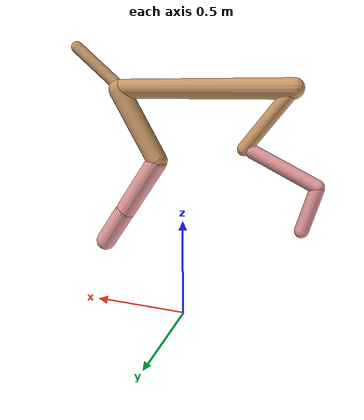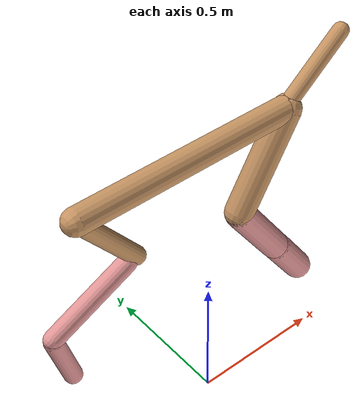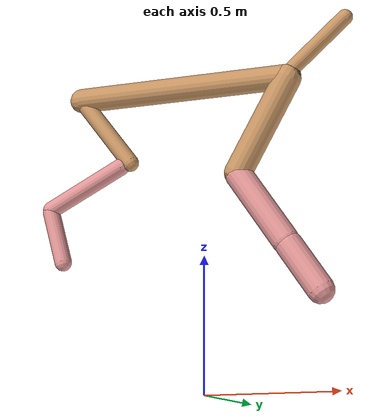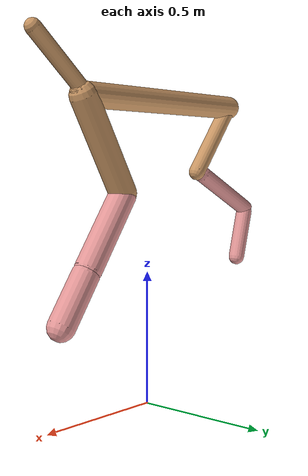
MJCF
<mujoco model="cheetah">
  <compiler angle="radian" coordinate="local" inertiafromgeom="true" settotalmass="14" />
  <default>
    <joint armature=".1" damping=".01" limited="true" solimplimit="0 .8 .03" solreflimit=".02 1" stiffness="8" />
    <geom conaffinity="0" condim="3" contype="1" friction="0.8 .1 .1" rgba="0.8 0.6 .4 1" solimp="0.0 0.8 0.01" solref="0.02 1" />
    <motor ctrllimited="true" ctrlrange="-1 1" />
  </default>
  <size nstack="300000" nuser_geom="1" />
  <option gravity="0 0 -9.81" timestep="0.01" />
  <worldbody>
    <body name="torso" pos="0.0 0.0 1.1365769584589231">
      <joint armature="0" axis="1 0 0" damping="0" limited="false" name="ignorex" pos="0 0 0" stiffness="0" type="slide" />
      <joint armature="0" axis="0 0 1" damping="0" limited="false" name="ignorez" pos="0 0 0" stiffness="0" type="slide" />
      <joint armature="0" axis="0 1 0" damping="0" limited="false" name="ignorey" pos="0 0 0" stiffness="0" type="hinge" />
      <geom fromto="-0.5 0.0 0.0 0.3286723202275091 0.0 0.0" name="torso" size="0.045548131132503285" type="capsule" />
      <geom axisangle="0 1 0 .87" name="head" pos="0.428672320227509 0.0 0.1" size="0.028499307726080232 0.15" type="capsule" />

      <body name="bthigh" pos="-.5 0 0">
        <joint axis="0 1 0" damping="6" name="bthigh" pos="0 0 0" range="-.52 1.05" stiffness="240" type="hinge" />
        <geom axisangle="0 1 0 -3.8" name="bthigh" pos="0.1077137411722398 0.0 -0.14002786352391172" size="0.0322 0.15765147618764336" type="capsule" />
        <body name="bshin" pos="0.17542748234447958 0.0 -0.27005572704782344">
          <joint axis="0 1 0" damping="4.5" name="bshin" pos="0 0 0" range="-.785 .785" stiffness="180" type="hinge" />
          <geom axisangle="0 1 0 -2.03" name="bshin" pos="-0.15170602514674086 0.0 -0.07585301257337043" rgba="0.9 0.6 0.6 1" size="0.0322 0.16308773398721726" type="capsule" />
          <body name="bfoot" pos="-0.3034120502934817 0.0 -0.15170602514674086">
            <joint axis="0 1 0" damping="3" name="bfoot" pos="0 0 0" range="-.4 .785" stiffness="120" type="hinge" />
            <geom axisangle="0 1 0 -.27" name="bfoot" pos="0.03242333825785864 0.0 -0.10483546036707628" rgba="0.9 0.6 0.6 1" size="0.0322 0.1022016466319895" type="capsule" />
            <inertial mass="10" />
          </body>
        </body>
      </body>
      <body name="fthigh" pos="0.32867232022750903 0.0 0.0">
        <joint axis="0 1 0" damping="4.5" name="fthigh" pos="0 0 0" range="-1.5 0.8" stiffness="180" type="hinge" />
        <geom axisangle="0 1 0 .52" name="fthigh" pos="-0.10060370063869413 0.0 -0.1724634868091899" size="0.05076821939931223 0.1937371709989925" type="capsule" />
        <body name="fshin" pos="-0.20120740127738826 0.0 -0.3449269736183798">
          <joint axis="0 1 0" damping="3" name="fshin" pos="0 0 0" range="-1.2 1.1" stiffness="120" type="hinge" />
          <geom axisangle="0 1 0 -.6" name="fshin" pos="0.09334188141381052 0.0 -0.12924260503450685" rgba="0.9 0.6 0.6 1" size="0.05076821939931223 0.15440706861573836" type="capsule" />
          <body name="ffoot" pos="0.18668376282762103 0.0 -0.2584852100690137">
            <joint axis="0 1 0" damping="1.5" name="ffoot" pos="0 0 0" range="-3.1 -0.3" stiffness="60" type="hinge" />
            <geom axisangle="0 1 0 -.6" name="ffoot" pos="0.0622863612066375 0.0 -0.09688989521032501" rgba="0.9 0.6 0.6 1" size="0.05076821939931223 0.10196693210473289" type="capsule" />
            <inertial mass="10" />
          </body>
        </body>
      </body>
    </body>
  </worldbody>
  <actuator>
    <motor gear="120" joint="bthigh" name="bthigh" />
    <motor gear="90" joint="bshin" name="bshin" />
    <motor gear="60" joint="bfoot" name="bfoot" />
    <motor gear="120" joint="fthigh" name="fthigh" />
    <motor gear="60" joint="fshin" name="fshin" />
    <motor gear="30" joint="ffoot" name="ffoot" />
  </actuator>
</mujoco>
